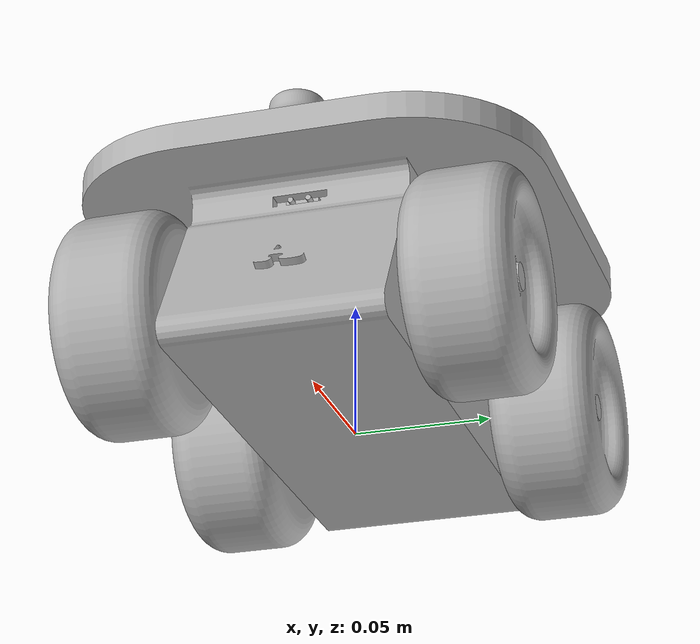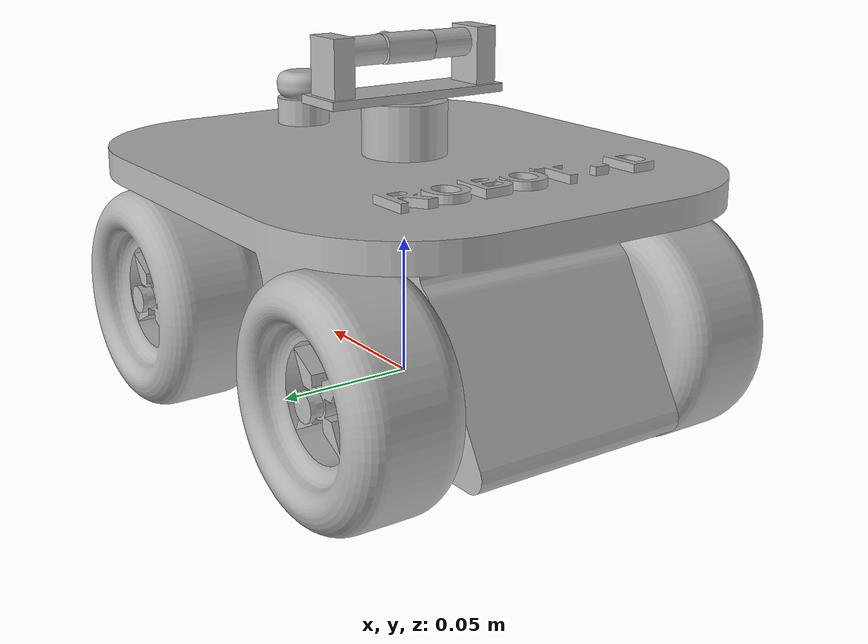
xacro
<?xml version="1.0" ?>
<robot name="robot_d" xmlns:xacro="http://www.ros.org/wiki/xacro">

<xacro:include filename="$(find robot_d_description)/urdf/materials.xacro" />
<xacro:include filename="$(find robot_d_description)/urdf/robot_d.trans" />
<xacro:include filename="$(find robot_d_description)/urdf/robot_d.gazebo" />
<link name="base_link">
  <inertial>
    <origin rpy="0 0 0" xyz="8.840965278505111e-05 2.8365098021494976e-06 0.04400008750781215"/>
    <mass value="9.973637068264665"/>
    <inertia ixx="0.016348" ixy="2e-06" ixz="-3e-05" iyy="0.032085" iyz="-1e-06" izz="0.035021"/>
  </inertial>
  <visual>
    <origin rpy="0 0 0" xyz="0 0 0"/>
    <geometry>
      <mesh filename="package://robot_d_description/meshes/base_link.stl" scale="0.001 0.001 0.001"/>
    </geometry>
    <material name="silver"/>
  </visual>
  <collision>
    <origin rpy="0 0 0" xyz="0 0 0"/>
    <geometry>
      <mesh filename="package://robot_d_description/meshes/base_link.stl" scale="0.001 0.001 0.001"/>
    </geometry>
  </collision>
</link>

<link name="right_f_w_1">
  <inertial>
    <origin rpy="0 0 0" xyz="5.599289453622758e-08 0.01617341410294361 6.413701695087703e-08"/>
    <mass value="1.1313312337085548"/>
    <inertia ixx="0.000652" ixy="-0.0" ixz="0.0" iyy="0.001056" iyz="-0.0" izz="0.000652"/>
  </inertial>
  <visual>
    <origin rpy="0 0 0" xyz="-0.06 0.0772 -0.025"/>
    <geometry>
      <mesh filename="package://robot_d_description/meshes/right_f_w_1.stl" scale="0.001 0.001 0.001"/>
    </geometry>
    <material name="silver"/>
  </visual>
  <collision>
    <origin rpy="0 0 0" xyz="-0.06 0.0772 -0.025"/>
    <geometry>
      <mesh filename="package://robot_d_description/meshes/right_f_w_1.stl" scale="0.001 0.001 0.001"/>
    </geometry>
  </collision>
</link>

<link name="right_b_w_1">
  <inertial>
    <origin rpy="0 0 0" xyz="5.5992894529288684e-08 0.01617341410294358 6.413701697516316e-08"/>
    <mass value="1.1313312337085548"/>
    <inertia ixx="0.000652" ixy="-0.0" ixz="0.0" iyy="0.001056" iyz="-0.0" izz="0.000652"/>
  </inertial>
  <visual>
    <origin rpy="0 0 0" xyz="0.06 0.0772 -0.025"/>
    <geometry>
      <mesh filename="package://robot_d_description/meshes/right_b_w_1.stl" scale="0.001 0.001 0.001"/>
    </geometry>
    <material name="silver"/>
  </visual>
  <collision>
    <origin rpy="0 0 0" xyz="0.06 0.0772 -0.025"/>
    <geometry>
      <mesh filename="package://robot_d_description/meshes/right_b_w_1.stl" scale="0.001 0.001 0.001"/>
    </geometry>
  </collision>
</link>

<link name="left_f_w_1">
  <inertial>
    <origin rpy="0 0 0" xyz="3.7150898295201795e-08 -0.01617340603079921 1.9397610214952343e-07"/>
    <mass value="1.1313386804395582"/>
    <inertia ixx="0.000652" ixy="-0.0" ixz="-0.0" iyy="0.001056" iyz="0.0" izz="0.000652"/>
  </inertial>
  <visual>
    <origin rpy="0 0 0" xyz="-0.06 -0.0772 -0.025"/>
    <geometry>
      <mesh filename="package://robot_d_description/meshes/left_f_w_1.stl" scale="0.001 0.001 0.001"/>
    </geometry>
    <material name="silver"/>
  </visual>
  <collision>
    <origin rpy="0 0 0" xyz="-0.06 -0.0772 -0.025"/>
    <geometry>
      <mesh filename="package://robot_d_description/meshes/left_f_w_1.stl" scale="0.001 0.001 0.001"/>
    </geometry>
  </collision>
</link>

<link name="left_b_w_1">
  <inertial>
    <origin rpy="0 0 0" xyz="3.536275892945806e-08 -0.016173406030799233 1.9397610213564564e-07"/>
    <mass value="1.1313386804395562"/>
    <inertia ixx="0.000652" ixy="-0.0" ixz="-0.0" iyy="0.001056" iyz="0.0" izz="0.000652"/>
  </inertial>
  <visual>
    <origin rpy="0 0 0" xyz="0.06 -0.0772 -0.025"/>
    <geometry>
      <mesh filename="package://robot_d_description/meshes/left_b_w_1.stl" scale="0.001 0.001 0.001"/>
    </geometry>
    <material name="silver"/>
  </visual>
  <collision>
    <origin rpy="0 0 0" xyz="0.06 -0.0772 -0.025"/>
    <geometry>
      <mesh filename="package://robot_d_description/meshes/left_b_w_1.stl" scale="0.001 0.001 0.001"/>
    </geometry>
  </collision>
</link>

<link name="cam_x_1">
  <inertial>
    <origin rpy="0 0 0" xyz="-0.00013224652821671636 -1.4646327235276284e-10 0.020095834537817325"/>
    <mass value="0.1424612132221006"/>
    <inertia ixx="7.2e-05" ixy="-0.0" ixz="0.0" iyy="2.4e-05" iyz="0.0" izz="5.5e-05"/>
  </inertial>
  <visual>
    <origin rpy="0 0 0" xyz="-0.0 -0.0 -0.080962"/>
    <geometry>
      <mesh filename="package://robot_d_description/meshes/cam_x_1.stl" scale="0.001 0.001 0.001"/>
    </geometry>
    <material name="silver"/>
  </visual>
  <collision>
    <origin rpy="0 0 0" xyz="-0.0 -0.0 -0.080962"/>
    <geometry>
      <mesh filename="package://robot_d_description/meshes/cam_x_1.stl" scale="0.001 0.001 0.001"/>
    </geometry>
  </collision>
</link>

<link name="cam-y_1">
  <inertial>
    <origin rpy="0 0 0" xyz="5.796475190008501e-06 0.019999999627005032 -7.184472045063117e-10"/>
    <mass value="0.02166590340523958"/>
    <inertia ixx="2e-06" ixy="0.0" ixz="0.0" iyy="0.0" iyz="-0.0" izz="2e-06"/>
  </inertial>
  <visual>
    <origin rpy="0 0 0" xyz="-0.0 0.02 -0.118"/>
    <geometry>
      <mesh filename="package://robot_d_description/meshes/cam-y_1.stl" scale="0.001 0.001 0.001"/>
    </geometry>
    <material name="silver"/>
  </visual>
  <collision>
    <origin rpy="0 0 0" xyz="-0.0 0.02 -0.118"/>
    <geometry>
      <mesh filename="package://robot_d_description/meshes/cam-y_1.stl" scale="0.001 0.001 0.001"/>
    </geometry>
  </collision>
</link>

<link name="camera_1">
  <inertial>
    <origin rpy="0 0 0" xyz="0.004000000000000001 -7.599592333207284e-10 1.759173764992461e-09"/>
    <mass value="0.003156672298327097"/>
    <inertia ixx="0.0" ixy="-0.0" ixz="0.0" iyy="0.0" iyz="-0.0" izz="0.0"/>
  </inertial>
  <visual>
    <origin rpy="0 0 0" xyz="-0.005 0.0 -0.118"/>
    <geometry>
      <mesh filename="package://robot_d_description/meshes/camera_1.stl" scale="0.001 0.001 0.001"/>
    </geometry>
    <material name="silver"/>
  </visual>
  <collision>
    <origin rpy="0 0 0" xyz="-0.005 0.0 -0.118"/>
    <geometry>
      <mesh filename="package://robot_d_description/meshes/camera_1.stl" scale="0.001 0.001 0.001"/>
    </geometry>
  </collision>
</link>

<link name="ultra_1">
  <inertial>
    <origin rpy="0 0 0" xyz="0.0017048228700862547 -7.049244960230272e-05 9.387731564336477e-10"/>
    <mass value="0.0005247690252135915"/>
    <inertia ixx="0.0" ixy="0.0" ixz="0.0" iyy="0.0" iyz="-0.0" izz="0.0"/>
  </inertial>
  <visual>
    <origin rpy="0 0 0" xyz="-0.061536 -0.0 -0.063"/>
    <geometry>
      <mesh filename="package://robot_d_description/meshes/ultra_1.stl" scale="0.001 0.001 0.001"/>
    </geometry>
    <material name="silver"/>
  </visual>
  <collision>
    <origin rpy="0 0 0" xyz="-0.061536 -0.0 -0.063"/>
    <geometry>
      <mesh filename="package://robot_d_description/meshes/ultra_1.stl" scale="0.001 0.001 0.001"/>
    </geometry>
  </collision>
</link>

<link name="lidar_1">
  <inertial>
    <origin rpy="0 0 0" xyz="-1.3877787807814457e-17 0.0 0.004999524227066329"/>
    <mass value="0.02157699521291738"/>
    <inertia ixx="1e-06" ixy="-0.0" ixz="-0.0" iyy="1e-06" iyz="-0.0" izz="1e-06"/>
  </inertial>
  <visual>
    <origin rpy="0 0 0" xyz="-0.07 -0.0 -0.090962"/>
    <geometry>
      <mesh filename="package://robot_d_description/meshes/lidar_1.stl" scale="0.001 0.001 0.001"/>
    </geometry>
    <material name="silver"/>
  </visual>
  <collision>
    <origin rpy="0 0 0" xyz="-0.07 -0.0 -0.090962"/>
    <geometry>
      <mesh filename="package://robot_d_description/meshes/lidar_1.stl" scale="0.001 0.001 0.001"/>
    </geometry>
  </collision>
</link>

<joint name="r_f_w_j" type="continuous">
  <origin rpy="0 0 0" xyz="0.06 -0.0772 0.025"/>
  <parent link="base_link"/>
  <child link="right_f_w_1"/>
  <axis xyz="0.0 -1.0 0.0"/>
</joint>

<joint name="r_b_w_j" type="continuous">
  <origin rpy="0 0 0" xyz="-0.06 -0.0772 0.025"/>
  <parent link="base_link"/>
  <child link="right_b_w_1"/>
  <axis xyz="0.0 -1.0 0.0"/>
</joint>

<joint name="l_f_w_j" type="continuous">
  <origin rpy="0 0 0" xyz="0.06 0.0772 0.025"/>
  <parent link="base_link"/>
  <child link="left_f_w_1"/>
  <axis xyz="0.0 1.0 0.0"/>
</joint>

<joint name="l_b_w_j" type="continuous">
  <origin rpy="0 0 0" xyz="-0.06 0.0772 0.025"/>
  <parent link="base_link"/>
  <child link="left_b_w_1"/>
  <axis xyz="0.0 1.0 0.0"/>
</joint>

<joint name="cam_x_j" type="revolute">
  <origin rpy="0 0 0" xyz="0.0 0.0 0.080962"/>
  <parent link="base_link"/>
  <child link="cam_x_1"/>
  <axis xyz="0.0 0.0 1.0"/>
  <limit effort="100" lower="-2.70526" upper="3.141593" velocity="100"/>
</joint>

<joint name="cam_y_j" type="revolute">
  <origin rpy="0 0 0" xyz="0.0 -0.02 0.037038"/>
  <parent link="cam_x_1"/>
  <child link="cam-y_1"/>
  <axis xyz="0.0 1.0 0.0"/>
  <limit effort="100" lower="-0.959931" upper="0.349066" velocity="100"/>
</joint>

<joint name="cam_j" type="fixed">
  <origin rpy="0 0 0" xyz="0.005 0.02 0.0"/>
  <parent link="cam-y_1"/>
  <child link="camera_1"/>
</joint>

<joint name="ultra_j" type="fixed">
  <origin rpy="0 0 0" xyz="0.061536 0.0 0.063"/>
  <parent link="base_link"/>
  <child link="ultra_1"/>
</joint>

<joint name="lidar_j" type="fixed">
  <origin rpy="0 0 0" xyz="0.07 0.0 0.090962"/>
  <parent link="base_link"/>
  <child link="lidar_1"/>
</joint>

</robot>

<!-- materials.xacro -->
<robot name="robot_d" xmlns:xacro="http://www.ros.org/wiki/xacro" >

<material name="silver">
  <color rgba="0.700 0.700 0.700 1.000"/>
</material>

</robot>

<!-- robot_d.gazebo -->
<robot name="robot_d" xmlns:xacro="http://www.ros.org/wiki/xacro" >

  <xacro:property name="body_color" value="Gazebo/Silver" />

  <gazebo>
    <plugin filename="libgazebo_ros_control.so" name="control"/>
  </gazebo>
  <gazebo reference="base_link">
    <material>${body_color}</material>
    <mu1>0.2</mu1>
    <mu2>0.2</mu2>
    <selfCollide>true</selfCollide>
    <gravity>true</gravity>
  </gazebo>

  <gazebo reference="right_f_w_1">
    <material>${body_color}</material>
    <mu1>0.2</mu1>
    <mu2>0.2</mu2>
    <selfCollide>true</selfCollide>
  </gazebo>

  <gazebo reference="right_b_w_1">
    <material>${body_color}</material>
    <mu1>0.2</mu1>
    <mu2>0.2</mu2>
    <selfCollide>true</selfCollide>
  </gazebo>

  <gazebo reference="left_f_w_1">
    <material>${body_color}</material>
    <mu1>0.2</mu1>
    <mu2>0.2</mu2>
    <selfCollide>true</selfCollide>
  </gazebo>

  <gazebo reference="left_b_w_1">
    <material>${body_color}</material>
    <mu1>0.2</mu1>
    <mu2>0.2</mu2>
    <selfCollide>true</selfCollide>
  </gazebo>

  <gazebo reference="cam_x_1">
    <material>${body_color}</material>
    <mu1>0.2</mu1>
    <mu2>0.2</mu2>
    <selfCollide>true</selfCollide>
  </gazebo>

  <gazebo reference="cam-y_1">
    <material>${body_color}</material>
    <mu1>0.2</mu1>
    <mu2>0.2</mu2>
    <selfCollide>true</selfCollide>
  </gazebo>

  <gazebo reference="camera_1">
    <material>${body_color}</material>
    <mu1>0.2</mu1>
    <mu2>0.2</mu2>
    <selfCollide>true</selfCollide>
  </gazebo>

  <gazebo reference="ultra_1">
    <material>${body_color}</material>
    <mu1>0.2</mu1>
    <mu2>0.2</mu2>
    <selfCollide>true</selfCollide>
  </gazebo>

  <gazebo reference="lidar_1">
    <material>${body_color}</material>
    <mu1>0.2</mu1>
    <mu2>0.2</mu2>
    <selfCollide>true</selfCollide>
  </gazebo>

  <!-- robot drive -->
  <gazebo>
    <plugin name="skid_steer_drive_controller" filename="libgazebo_ros_skid_steer_drive.so">
      <updateRate>20.0</updateRate>
      <leftFrontJoint>l_f_w_j</leftFrontJoint>
      <rightFrontJoint>r_f_w_j</rightFrontJoint>
      <leftRearJoint>l_b_w_j</leftRearJoint>
      <rightRearJoint>r_b_w_j</rightRearJoint>
      <wheelSeparation>0.4</wheelSeparation>
      <wheelDiameter>0.2</wheelDiameter>
      <robotBaseFrame>ebot_base</robotBaseFrame>
      <torque>100</torque>
      <topicName>cmd_vel</topicName>

      <commandTopic>cmd_vel</commandTopic>
      <odometryTopic>odom</odometryTopic>
      <odometryFrame>odom</odometryFrame>

      <broadcastTF>true</broadcastTF>
   </plugin>
  </gazebo>

  <!-- lidar -->

  <gazebo reference="lidar_1">
    <sensor type="ray" name="head_rplidar_sensor">
      <pose>0 0 0 0 0 0</pose>
      <visualize>true</visualize>
      <update_rate>40</update_rate>
      <ray>
        <scan>
          <horizontal>
            <samples>720</samples>
            <resolution>1</resolution>
            <min_angle>-1.57</min_angle>
            <max_angle>1.57</max_angle>
          </horizontal>
        </scan>
        <range>
          <min>0.2</min>   <!--actual range: 0.05 to 8m -->
          <max>8</max>
          <resolution>0.01</resolution>
        </range>
        <noise>
          <type>gaussian</type>
          <mean>0.0</mean>
          <stddev>0.01</stddev>
        </noise>
      </ray>
      <plugin name="gazebo_ros_head_rplidar_controller" filename="libgazebo_ros_laser.so">
        <topicName>/scan</topicName>
        <frameName>laser</frameName>
      </plugin>
    </sensor>
  </gazebo>

  <!-- camera -->
  <gazebo reference="camera_1">
    <sensor type="camera" name="camera1">
      <update_rate>30.0</update_rate>
      <camera name="head">
        <horizontal_fov>1.3962634</horizontal_fov>
        <image>
          <width>800</width>
          <height>800</height>
          <format>R8G8B8</format>
        </image>
        <clip>
          <near>0.02</near>
          <far>300</far>
        </clip>
        <noise>
          <type>gaussian</type>
          <!-- Noise is sampled independently per pixel on each frame.
               That pixel's noise value is added to each of its color
               channels, which at that point lie in the range [0,1]. -->
          <mean>0.0</mean>
          <stddev>0.007</stddev>
        </noise>
      </camera>
      <plugin name="camera_controller" filename="libgazebo_ros_camera.so">
        <alwaysOn>true</alwaysOn>
        <updateRate>0.0</updateRate>
        <cameraName>camera1</cameraName>
        <imageTopicName>image_raw</imageTopicName>
        <cameraInfoTopicName>camera_info</cameraInfoTopicName>
        <frameName>camera_link</frameName>
        <hackBaseline>0.07</hackBaseline>
        <distortionK1>0.0</distortionK1>
        <distortionK2>0.0</distortionK2>
        <distortionK3>0.0</distortionK3>
        <distortionT1>0.0</distortionT1>
        <distortionT2>0.0</distortionT2>
      </plugin>
    </sensor>
  </gazebo>

</robot>
